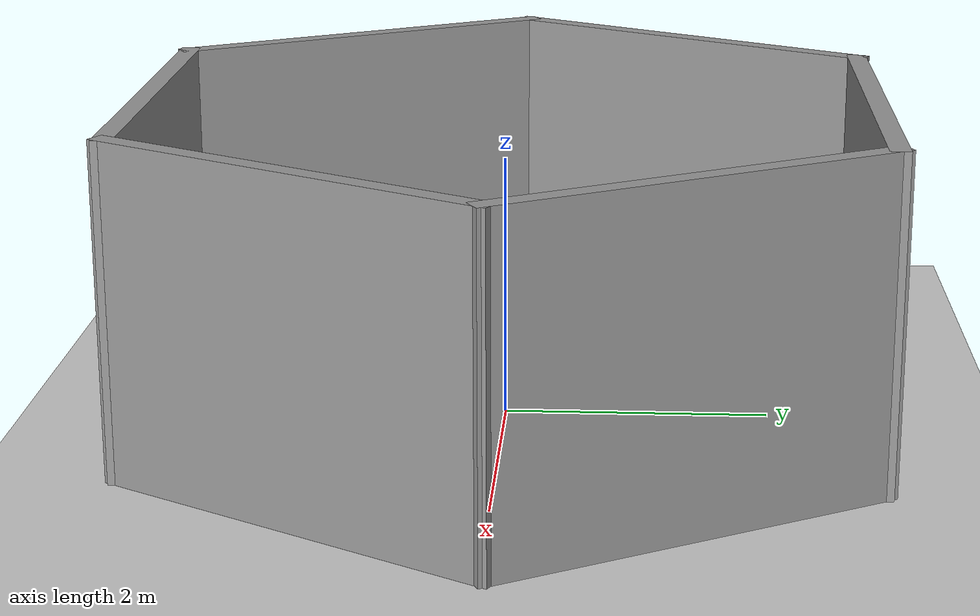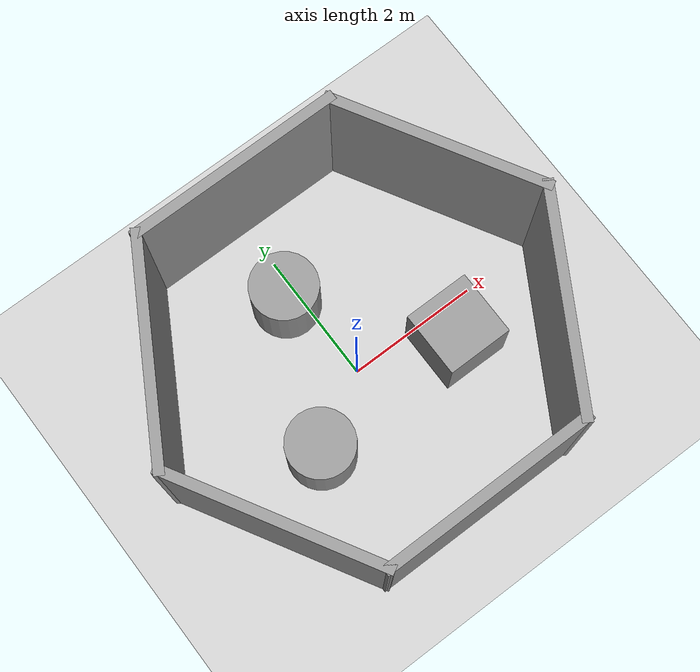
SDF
<sdf version="1.7">
 <world name="default">
  <light name="sun" type="directional">
   <pose>0 0 10 0 -0 0</pose>
   <diffuse>0.8 0.8 0.8 1</diffuse>
   <specular>0.2 0.2 0.2 1</specular>
   <attenuation>
    <range>1000</range>
    <constant>0.9</constant>
    <linear>0.01</linear>
    <quadratic>0.001</quadratic>
   </attenuation>
   <direction>-0.5 0.1 -0.9</direction>
   <spot><inner_angle>0</inner_angle><outer_angle>0</outer_angle><falloff>0</falloff></spot>
  </light>
  <model name="ground_plane">
   <static>1</static>
   <link name="link">
    <collision name="collision">
     <geometry><plane><normal>0 0 1</normal><size>100 100</size></plane></geometry>
     <surface>
      <contact><collide_bitmask>65535</collide_bitmask></contact>
      <friction><ode><mu>100</mu><mu2>50</mu2></ode></friction>
     </surface>
    </collision>
    <visual name="visual">
     <cast_shadows>0</cast_shadows>
     <geometry><plane><normal>0 0 1</normal><size>100 100</size></plane></geometry>
     <material>
      <script><uri>file://media/materials/scripts/gazebo.material</uri><name>Gazebo/Grey</name></script>
     </material>
    </visual>
   </link>
  </model>
  <gravity>0 0 -9.8</gravity>
  <magnetic_field>6e-06 2.3e-05 -4.2e-05</magnetic_field>
  <atmosphere type="adiabatic"/>
  <physics type="ode">
   <max_step_size>0.001</max_step_size>
   <real_time_factor>1</real_time_factor>
   <real_time_update_rate>1000</real_time_update_rate>
  </physics>
  <scene><ambient>0.4 0.4 0.4 1</ambient><background>0.7 0.7 0.7 1</background><shadows>1</shadows></scene>
  <audio><device>default</device></audio>
  <spherical_coordinates>
   <surface_model>EARTH_WGS84</surface_model>
   <latitude_deg>0</latitude_deg>
   <longitude_deg>0</longitude_deg>
   <elevation>0</elevation>
   <heading_deg>0</heading_deg>
  </spherical_coordinates>
  <model name="Untitled">
   <pose>0.047518 0.036675 0 0 -0 0</pose>
   <link name="Wall_27">
    <collision name="Wall_27_Collision">
     <geometry><box><size>3.25 0.15 2.5</size></box></geometry>
     <pose>0 0 1.25 0 -0 0</pose>
    </collision>
    <visual name="Wall_27_Visual">
     <pose>0 0 1.25 0 -0 0</pose>
     <geometry><box><size>3.25 0.15 2.5</size></box></geometry>
     <material>
      <script><uri>file://media/materials/scripts/gazebo.material</uri><name>Gazebo/Grey</name></script>
      <ambient>1 1 1 1</ambient>
     </material>
     <meta><layer>0</layer></meta>
    </visual>
    <pose>-2.325 1.34234 0 0 -0 -2.0944</pose>
   </link>
   <link name="Wall_28">
    <collision name="Wall_28_Collision">
     <geometry><box><size>3.25 0.15 2.5</size></box></geometry>
     <pose>0 0 1.25 0 -0 0</pose>
    </collision>
    <visual name="Wall_28_Visual">
     <pose>0 0 1.25 0 -0 0</pose>
     <geometry><box><size>3.25 0.15 2.5</size></box></geometry>
     <material>
      <script><uri>file://media/materials/scripts/gazebo.material</uri><name>Gazebo/Grey</name></script>
      <ambient>1 1 1 1</ambient>
     </material>
     <meta><layer>0</layer></meta>
    </visual>
    <pose>-2.325 -1.34234 0 0 -0 -1.0472</pose>
   </link>
   <link name="Wall_29">
    <collision name="Wall_29_Collision">
     <geometry><box><size>3.25 0.15 2.5</size></box></geometry>
     <pose>0 0 1.25 0 -0 0</pose>
    </collision>
    <visual name="Wall_29_Visual">
     <pose>0 0 1.25 0 -0 0</pose>
     <geometry><box><size>3.25 0.15 2.5</size></box></geometry>
     <material>
      <script><uri>file://media/materials/scripts/gazebo.material</uri><name>Gazebo/Grey</name></script>
      <ambient>1 1 1 1</ambient>
     </material>
     <meta><layer>0</layer></meta>
    </visual>
    <pose>-0 -2.68468 0 0 -0 0</pose>
   </link>
   <link name="Wall_30">
    <collision name="Wall_30_Collision">
     <geometry><box><size>3.25 0.15 2.5</size></box></geometry>
     <pose>0 0 1.25 0 -0 0</pose>
    </collision>
    <visual name="Wall_30_Visual">
     <pose>0 0 1.25 0 -0 0</pose>
     <geometry><box><size>3.25 0.15 2.5</size></box></geometry>
     <material>
      <script><uri>file://media/materials/scripts/gazebo.material</uri><name>Gazebo/Grey</name></script>
      <ambient>1 1 1 1</ambient>
     </material>
     <meta><layer>0</layer></meta>
    </visual>
    <pose>2.325 -1.34234 0 0 -0 1.0472</pose>
   </link>
   <link name="Wall_31">
    <collision name="Wall_31_Collision">
     <geometry><box><size>3.25 0.15 2.5</size></box></geometry>
     <pose>0 0 1.25 0 -0 0</pose>
    </collision>
    <visual name="Wall_31_Visual">
     <pose>0 0 1.25 0 -0 0</pose>
     <geometry><box><size>3.25 0.15 2.5</size></box></geometry>
     <material>
      <script><uri>file://media/materials/scripts/gazebo.material</uri><name>Gazebo/Grey</name></script>
      <ambient>1 1 1 1</ambient>
     </material>
     <meta><layer>0</layer></meta>
    </visual>
    <pose>2.325 1.34234 0 0 -0 2.0944</pose>
   </link>
   <link name="Wall_32">
    <collision name="Wall_32_Collision">
     <geometry><box><size>3.25 0.15 2.5</size></box></geometry>
     <pose>0 0 1.25 0 -0 0</pose>
    </collision>
    <visual name="Wall_32_Visual">
     <pose>0 0 1.25 0 -0 0</pose>
     <geometry><box><size>3.25 0.15 2.5</size></box></geometry>
     <material>
      <script><uri>file://media/materials/scripts/gazebo.material</uri><name>Gazebo/Grey</name></script>
      <ambient>1 1 1 1</ambient>
     </material>
     <meta><layer>0</layer></meta>
    </visual>
    <pose>-0 2.68468 0 0 -0 3.14159</pose>
   </link>
   <static>1</static>
  </model>
  <model name="unit_cylinder">
   <pose>-0.210341 1.39817 0.499997 3e-06 4e-06 -0</pose>
   <link name="link">
    <inertial>
     <mass>1</mass>
     <inertia><ixx>0.145833</ixx><ixy>0</ixy><ixz>0</ixz><iyy>0.145833</iyy><iyz>0</iyz><izz>0.125</izz></inertia>
    </inertial>
    <collision name="collision">
     <geometry><cylinder><radius>0.5</radius><length>1</length></cylinder></geometry>
    </collision>
    <visual name="visual">
     <geometry><cylinder><radius>0.5</radius><length>1</length></cylinder></geometry>
     <material>
      <script><name>Gazebo/Grey</name><uri>file://media/materials/scripts/gazebo.material</uri></script>
     </material>
    </visual>
   </link>
  </model>
  <model name="unit_box">
   <pose>1.37955 -0.48126 0.499995 -1e-05 -0 0</pose>
   <link name="link">
    <inertial>
     <mass>1</mass>
     <inertia>
      <ixx>0.166667</ixx>
      <ixy>0</ixy>
      <ixz>0</ixz>
      <iyy>0.166667</iyy>
      <iyz>0</iyz>
      <izz>0.166667</izz>
     </inertia>
    </inertial>
    <collision name="collision"><geometry><box><size>1 1 1</size></box></geometry></collision>
    <visual name="visual">
     <geometry><box><size>1 1 1</size></box></geometry>
     <material>
      <script><name>Gazebo/Grey</name><uri>file://media/materials/scripts/gazebo.material</uri></script>
     </material>
    </visual>
   </link>
  </model>
  <model name="unit_cylinder_0">
   <pose>-1.12486 -0.670618 0.499997 3e-06 4e-06 -0</pose>
   <link name="link">
    <inertial>
     <mass>1</mass>
     <inertia><ixx>0.145833</ixx><ixy>0</ixy><ixz>0</ixz><iyy>0.145833</iyy><iyz>0</iyz><izz>0.125</izz></inertia>
    </inertial>
    <collision name="collision">
     <geometry><cylinder><radius>0.5</radius><length>1</length></cylinder></geometry>
    </collision>
    <visual name="visual">
     <geometry><cylinder><radius>0.5</radius><length>1</length></cylinder></geometry>
     <material>
      <script><name>Gazebo/Grey</name><uri>file://media/materials/scripts/gazebo.material</uri></script>
     </material>
    </visual>
   </link>
  </model>
 </world>
</sdf>
